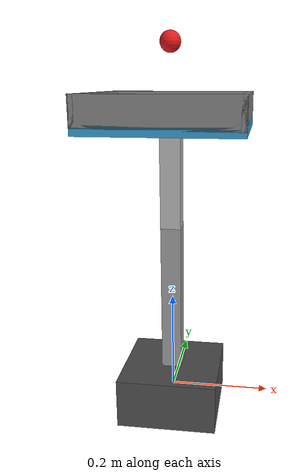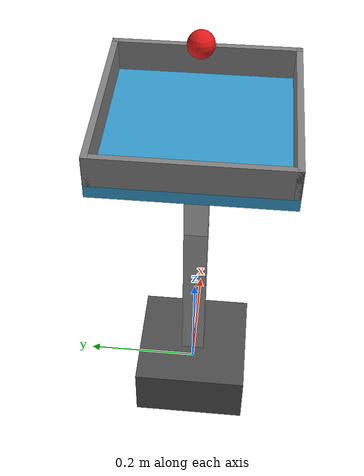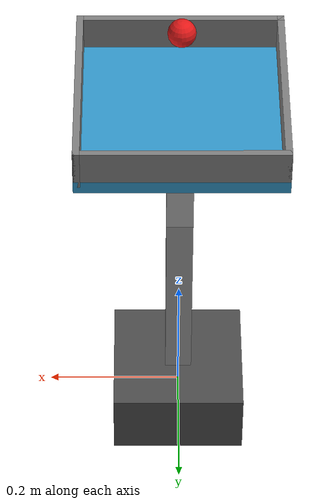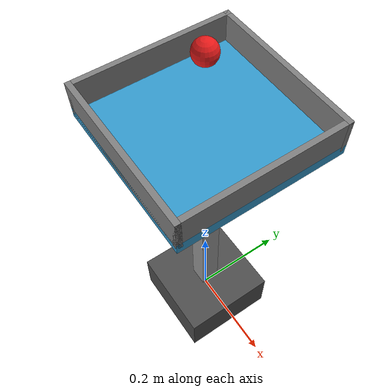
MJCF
<mujoco model="ball_balancing_arm">
    <compiler angle="degree" coordinate="local"/>
    <option timestep="0.002" gravity="0 0 -9.81"/>

    <default>
        <joint damping="1"/>
        <geom friction="0.6 0.2 0.1" density="1000"/>
    </default>

    <worldbody>

        <!-- Base -->
        <body name="base" pos="0 0 0">
            <geom type="box" size="0.1 0.1 0.05" rgba="0.3 0.3 0.3 1"/>

            <!-- Link 1 -->
            <body name="link1" pos="0 0 0.05">
                <joint name="joint_y"
                       type="hinge"
                       axis="0 1 0"
                       limited="true"
                       range="-25 25"/>

                <geom type="box"
                      size="0.02 0.02 0.15"
                      pos="0 0 0.15"
                      rgba="0.6 0.6 0.6 1"/>

                <!-- Link 2 -->
                <body name="link2" pos="0 0 0.3">
                    <joint name="joint_x"
                           type="hinge"
                           axis="1 0 0"
                           limited="true"
                           range="-45 45"/>

                    <geom type="box"
                          size="0.02 0.02 0.1"
                          pos="0 0 0.1"
                          rgba="0.7 0.7 0.7 1"/>

                    <!-- Plate with walls -->
                    <body name="plate" pos="0 0 0.2">
                        <!-- Plate surface -->
                        <geom type="box"
                              size="0.15 0.15 0.01"
                              rgba="0.2 0.6 0.8 1"/>

                        <!-- Walls -->
                        <geom type="box" size="0.15 0.005 0.03" pos="0 0.145 0.03"/>
                        <geom type="box" size="0.15 0.005 0.03" pos="0 -0.145 0.03"/>
                        <geom type="box" size="0.005 0.15 0.03" pos="0.145 0 0.03"/>
                        <geom type="box" size="0.005 0.15 0.03" pos="-0.145 0 0.03"/>
                    </body>

                </body>
            </body>
        </body>

        <!-- Ball -->
        <body name="ball" pos="0 0 0.7">
            <joint type="free"/>
            <geom type="sphere"
                  size="0.02"
                  rgba="0.9 0.1 0.1 1"/>
        </body>

    </worldbody>

    <!-- Actuators -->
    <actuator>
        <motor joint="joint_y" ctrlrange="-1 1" gear="150"/>
        <motor joint="joint_x" ctrlrange="-1 1" gear="150"/>
    </actuator>

</mujoco>
